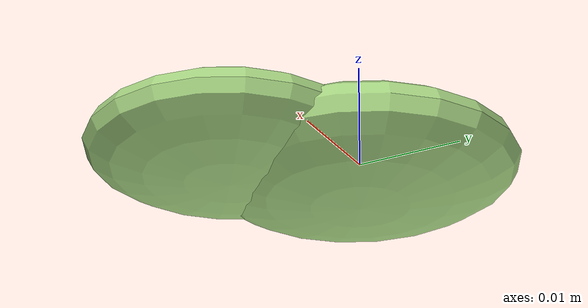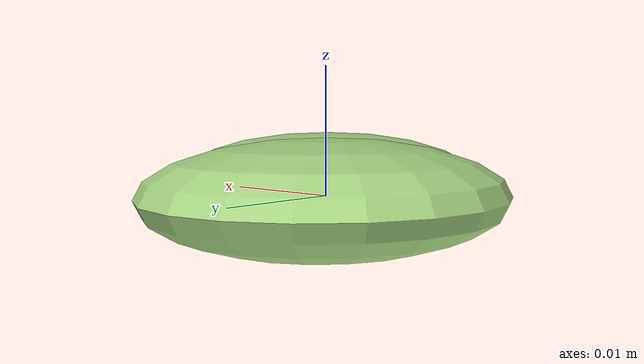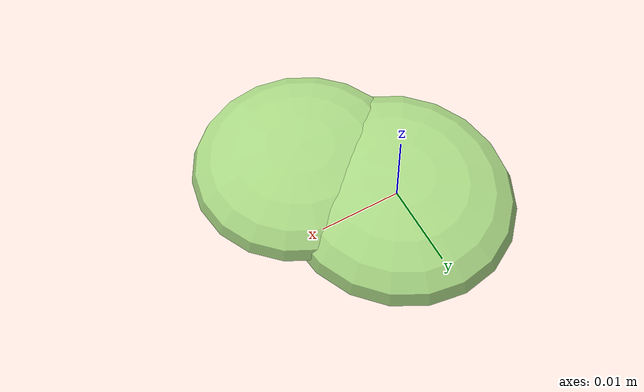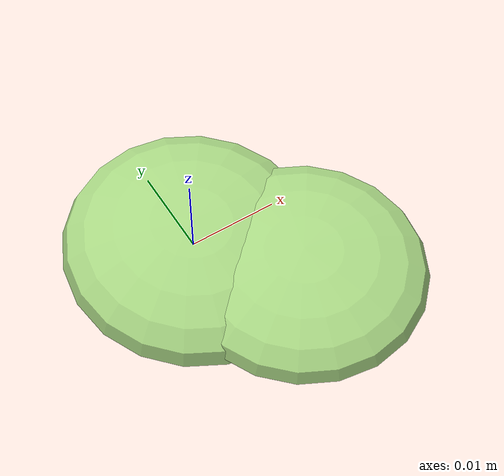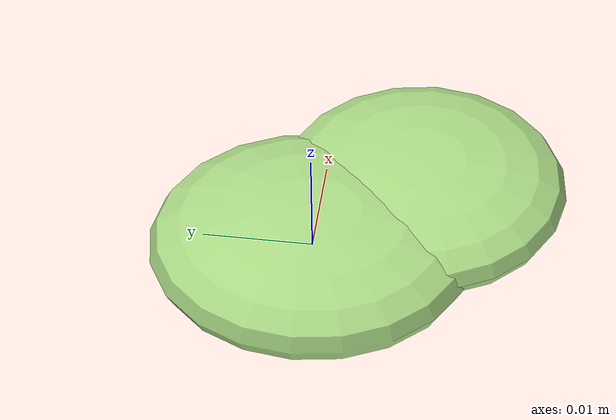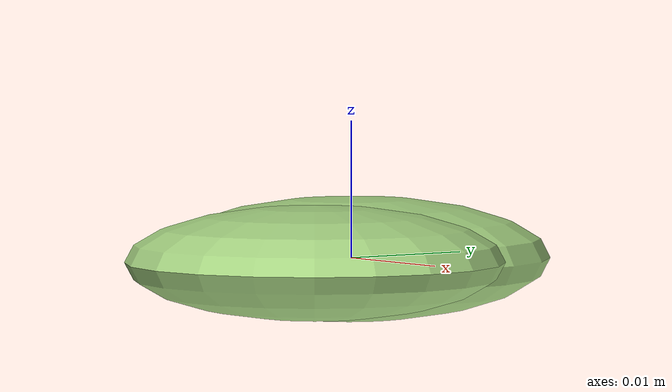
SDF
<?xml version="1.0" ?>
<!-- |    This document was autogenerated by xmacro from data/veggie_template/veggie_base.sdf.xacro  | -->
<!-- |    EDITING THIS FILE BY HAND IS NOT RECOMMENDED                                               | -->
<sdf version="1.8">
	<!-- Parameters -->
	<!-- Base -->
	<!-- Joint 0 -->
	<!-- Link 1 -->
	<!-- Joint 1 -->
	<!-- Link 2 -->
	<!-- Primitives -->
	<!-- All dimensions are half -->
	<!-- Object -->
	<model name="veggie">
		<!-- link0 -->
		<link name="link0">
			<inertial>
				<mass>0.0038824180135492875</mass>
				<inertia>
					<ixx>1.868267345025624e-07</ixx>
					<ixy>0</ixy>
					<ixz>0</ixz>
					<iyy>1.6574864951388645e-07</iyy>
					<iyz>0</iyz>
					<izz>3.2126764621496553e-07</izz>
				</inertia>
			</inertial>
			<visual name="link0_visual">
				<pose>0 0 0 0 0 0</pose>
				<geometry>
					<ellipsoid>
						<radii>0.013903260200333853 0.01484743101535193 0.004489983051559377</radii>
					</ellipsoid>
				</geometry>
				<material>
					<ambient>0.659 0.839 0.514 1</ambient>
					<diffuse>0.659 0.839 0.514 1</diffuse>
					<specular>0 0 0 0</specular>
					<emissive>0 0 0 1</emissive>
				</material>
			</visual>
			<collision name="link0_collision">
				<pose>0 0 0 0 0 0 </pose>
				<geometry>
					<ellipsoid>
						<radii>0.013903260200333853 0.01484743101535193 0.004489983051559377</radii>
					</ellipsoid>
				</geometry>
			</collision>
		</link>
		<!-- link1 -->
		<joint name="joint0" type="fixed">
			<pose relative_to="link0">0.007953608627443981 -0.00900577226059423 0.0005789025559133712 0.0 0.0 0.0</pose>
			<parent>link0</parent>
			<child>link1</child>
		</joint>
		<link name="link1">
			<pose relative_to="joint0">0 0 0 0 0 0</pose>
			<inertial>
				<mass>0.0029551611647394846</mass>
				<inertia>
					<ixx>1.1442204085404718e-07</ixx>
					<ixy>0</ixy>
					<ixz>0</ixz>
					<iyy>1.1465141046392442e-07</iyy>
					<iyz>0</iyz>
					<izz>2.1052541022214142e-07</izz>
				</inertia>
			</inertial>
			<visual name="link1_visual">
				<pose>0 0 0 0 0 0</pose>
				<geometry>
					<ellipsoid>
						<radii>0.013352670599933997 0.013338130643738485 0.0039612152618846135</radii>
					</ellipsoid>
				</geometry>
				<material>
					<ambient>0.659 0.839 0.514 1</ambient>
					<diffuse>0.659 0.839 0.514 1</diffuse>
					<specular>0 0 0 0</specular>
					<emissive>0 0 0 1</emissive>
				</material>
			</visual>
			<collision name="link1_collision">
				<pose>0 0 0 0 0 0 </pose>
				<geometry>
					<ellipsoid>
						<radii>0.013352670599933997 0.013338130643738485 0.0039612152618846135</radii>
					</ellipsoid>
				</geometry>
			</collision>
		</link>
		<!-- link2 -->
	</model>
</sdf>
